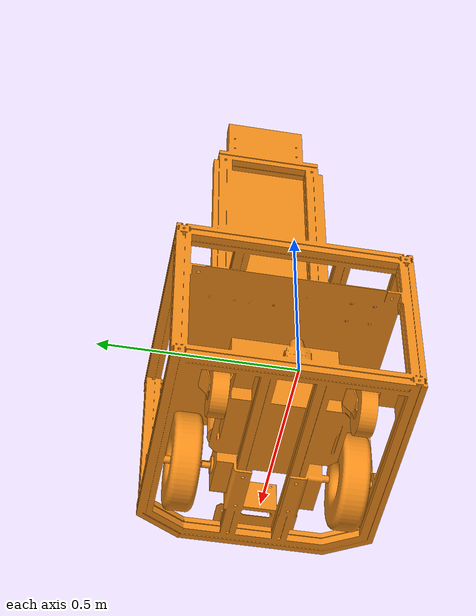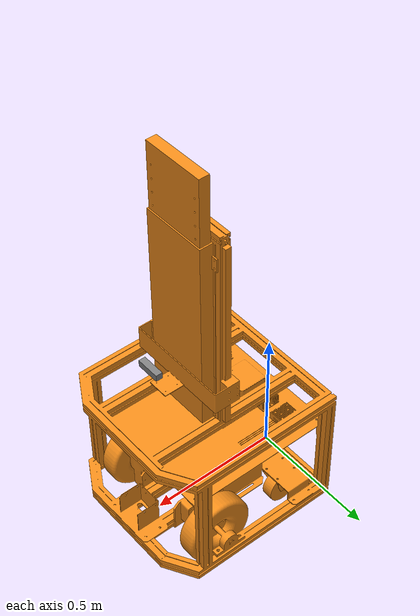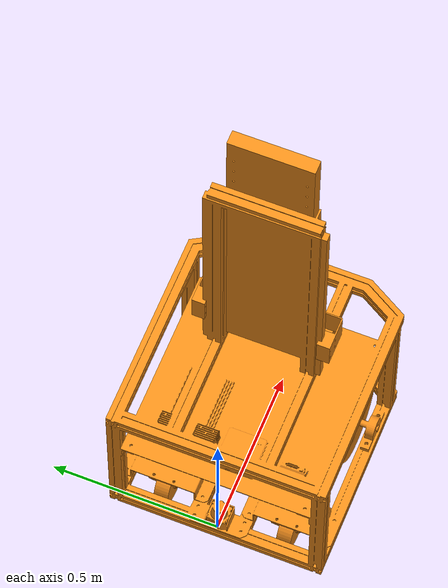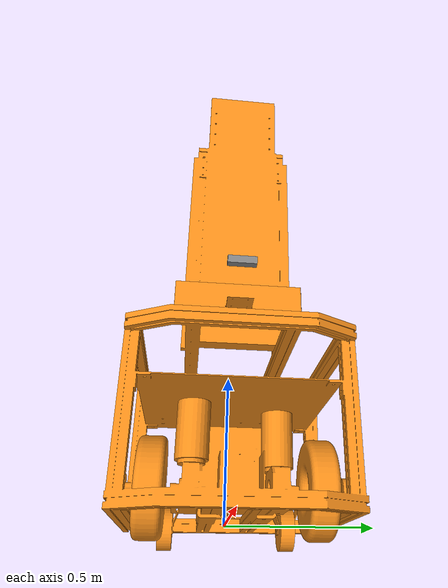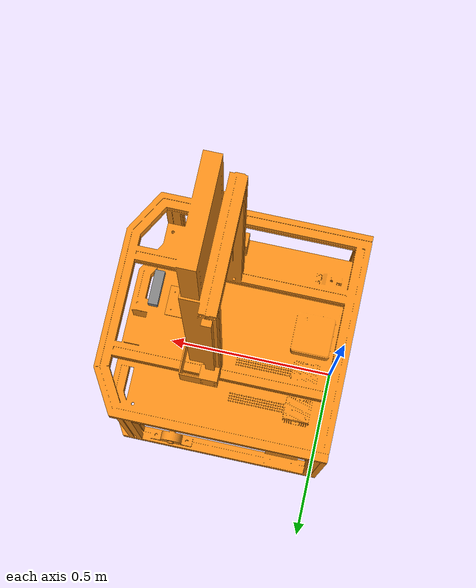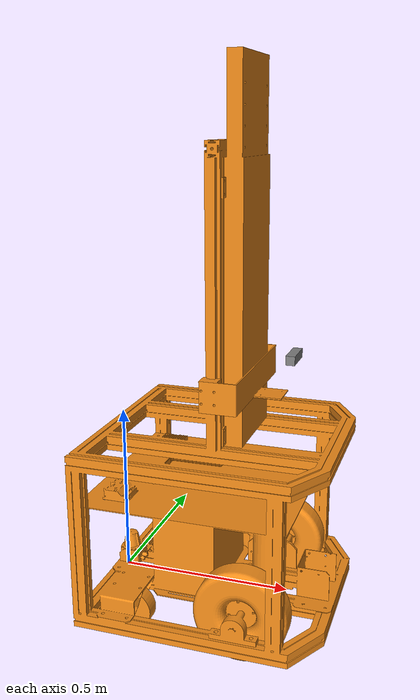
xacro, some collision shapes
<robot name="OPTIMUS_robot_001" xmlns:xacro="http://www.ros.org/wiki/xacro">

    <xacro:property name="M_PI" value="3.1415926535897931"/>
    <xacro:property name="deg_to_rad" value="0.01745329251994329577"/>
    <xacro:property name="camera_link" value="0.05" /> <!-- Size of square 'camera' box -->

    <xacro:property name="INTEL_D435_MOUNT_LINK" value="camera_mount_dummy_link"/>
    <xacro:property name="INTEL_D435_MOUNT_X" value="0.1"/>
    <xacro:property name="INTEL_D435_MOUNT_Y" value="-0.045"/>
    <xacro:property name="INTEL_D435_MOUNT_Z" value="0.1"/>
    <xacro:property name="INTEL_D435_MOUNT_R" value="${M_PI*0.0}"/>
    <xacro:property name="INTEL_D435_MOUNT_P" value="${M_PI*0.0}"/>
    <xacro:property name="INTEL_D435_MOUNT_Y" value="${M_PI*0.0}"/>
    <xacro:include filename="sensors/intel_d435.xacro"/>

    <link name="base_footprint"/>
    <joint name="base_footprint_joint" type="fixed">
        <parent link="base_footprint"/>
        <child link="base_link"/>
        <origin xyz="0.00 0.00 0" rpy="0.0 0.0 0.0"/>
    </joint>

        <link name="camera_mount_dummy_link"/>
    <joint name="camera_mount_dummy_link_joint" type="fixed">
        <parent link="elevator"/>
        <child link="camera_mount_dummy_link"/>
        <origin xyz="0 0 0" rpy="${M_PI*0.0} ${M_PI*0.0} ${M_PI*0.0}"/>
    </joint>

    <!-- Base Link -->
    <link name="base_link">
        <collision>
            <origin xyz="0 0 0" rpy="0 0 0"/>
            <geometry>
                <mesh filename="package://infi_sim_v1/models/OPTIMUS_robot_001/meshes/base_link_collision_101.stl" scale="1 1 1"/>
            </geometry>
        </collision>
        <visual>
            <origin xyz="0 0 0" rpy="0 0 0"/>
            <geometry>
                <mesh filename="package://infi_sim_v1/models/OPTIMUS_robot_001/meshes/base_link.STL" scale="1 1 1"/>
            </geometry>
            <material name="orange"/>
        </visual>
        <inertial>
            <origin xyz="0.3 0 0.2" rpy="0 0 0"/>
            <mass value="80"/>
            <inertia
                    ixx="14.480" ixy="0" ixz="0.0"
                    iyy="14.672" iyz="0.0"
                    izz="3.480"/>
        </inertial>
    </link>
    <gazebo reference="base_link">
        <mu1>0.1</mu1>
        <mu2>0.1</mu2>
        <kp>500000.0</kp>
        <kd>10.0</kd>
        <minDepth>0.001</minDepth>
        <maxVel>0.1</maxVel>
        <fdir1>1 0 0</fdir1>
        <material>Gazebo/FlatBlack</material>
    </gazebo>

    <!-- Wheels -->
    <joint name="j_whFR" type="continuous">
        <parent link="base_link"/>
        <child link="whFR"/>
        <origin xyz="0.4315 -0.185 0.0533" rpy="0 0 0"/>
        <axis xyz="0 1 0"/>
    </joint>
    <link name="whFR">
        <collision>
            <origin xyz="0 -0.0375 0" rpy="1.5707963267948966 0 0"/>
            <geometry>
                <cylinder radius="0.13" length="0.075"/>

            </geometry>
        </collision>
        <visual>
            <origin xyz="0 0 0" rpy="0 0 -1.5707963267948966"/>
            <geometry>
                <mesh filename="package://infi_sim_v1/models/OPTIMUS_robot_001/meshes/wheel_front_left.STL" scale="1 1 1"/>
            </geometry>
            <material name="orange"/>
        </visual>

        <inertial>
            <origin xyz="0 0.0 0" rpy="0 0 0"/>
            <mass value="1.5"/>
            <inertia
                    ixx="0.007688273" ixy="0.0" ixz="0.0"
                    iyy="0.0140792" iyz="0.0"
                    izz="0.007688273"/>
        </inertial>
    </link>

    <joint name="j_whFL" type="continuous">
        <parent link="base_link"/>
        <child link="whFL"/>
        <origin xyz="0.4315 0.185 0.0533" rpy="0 0 0"/>
        <axis xyz="0 1 0"/>
    </joint>
    <link name="whFL">
        <collision>
            <origin xyz="0 0.0375 0" rpy=" 1.5707963267948966 0 0"/>
            <geometry>
                <cylinder radius="0.13" length="0.075"/>
                <mesh filename="package://infi_sim_v1/models/OPTIMUS_robot_001/meshes/wheel_front_left.STL" scale="1 1 1"/>
            </geometry>
        </collision>

        <visual>
            <origin xyz="0 0 0" rpy="0 0 1.5707963267948966"/>
            <geometry>
                <mesh filename="package://infi_sim_v1/models/OPTIMUS_robot_001/meshes/wheel_front_left.STL" scale="1 1 1"/>
            </geometry>
            <material name="orange"/>
        </visual>

        <inertial>
            <origin xyz="0 0.0 0" rpy="0 0 0"/>
            <mass value="1.5"/>
            <inertia
                    ixx="0.007688273" ixy="0.0" ixz="0.0"
                    iyy="0.0140792" iyz="0.0"
                    izz="0.007688273"/>
        </inertial>
    </link>

    <joint name="j_whRL" type="fixed">
        <parent link="base_link"/>
        <child link="whRL"/>
        <origin xyz="0.095 0.2075 -0.0173" rpy="0 0 0"/>
        <axis xyz="0 1 0"/>
    </joint>
    <link name="whRL">
        <collision>
            <origin xyz="0 0 0" rpy="1.5707963267948966 0 0"/>
            <geometry>
                <mesh filename="package://infi_sim_v1/models/OPTIMUS_robot_001/meshes/wheel_back_left.STL" scale="1 1 1"/>
            </geometry>
        </collision>
        <visual>
            <origin xyz="0 0 0" rpy="1.5707963267948966 0 0"/>
            <geometry>
                <mesh filename="package://infi_sim_v1/models/OPTIMUS_robot_001/meshes/wheel_back_left.STL" scale="1 1 1"/>
            </geometry>
            <material name="orange"/>
        </visual>

        <inertial>
            <origin xyz="0 -0.0215 0" rpy="0 0 0"/>
            <mass value="0.4"/>
            <inertia
                    ixx="0.0004538583" ixy="0.0" ixz="0.0"
                    iyy="0.00078445" iyz="0.0"
                    izz="0.0004538583"/>
        </inertial>
    </link>
    <gazebo reference="whRL">
        <mu1>0.0000001</mu1>
        <mu2>0.0000001</mu2>
        <kp>500000.0</kp>
        <kd>10.0</kd>
        <minDepth>0.001</minDepth>
        <maxVel>0.1</maxVel>
        <fdir1>1 0 0</fdir1>
        <material>Gazebo/Orange</material>
    </gazebo>

    <joint name="j_whRR" type="fixed">
        <parent link="base_link"/>
        <child link="whRR"/>
        <origin xyz="0.095 -0.2075 -0.0173" rpy="0 0 0"/>
        <axis xyz="0 1 0"/>
    </joint>
    <link name="whRR">
        <collision>
            <origin xyz="0 0 0" rpy="-1.5707963267948966 0 0"/>
            <geometry>
                <mesh filename="package://infi_sim_v1/models/OPTIMUS_robot_001/meshes/wheel_back_left.STL" scale="1 1 1"/>
            </geometry>
        </collision>
        <visual>
            <origin xyz="0 0 0" rpy="-1.5707963267948966 0 0"/>
            <geometry>
                <mesh filename="package://infi_sim_v1/models/OPTIMUS_robot_001/meshes/wheel_back_left.STL" scale="1 1 1"/>
            </geometry>
            <material name="orange"/>
        </visual>

        <inertial>
            <origin xyz="0 0.0215 0" rpy="0 0 0"/>
            <mass value="0.4"/>
            <inertia
                    ixx="0.0004538583" ixy="0.0" ixz="0.0"
                    iyy="0.00078445" iyz="0.0"
                    izz="0.0004538583"/>
        </inertial>
    </link>
    <gazebo reference="whRR">
        <mu1>0.0000001</mu1>
        <mu2>0.0000001</mu2>
        <kp>500000.0</kp>
        <kd>10.0</kd>
        <minDepth>0.001</minDepth>
        <maxVel>0.1</maxVel>
        <fdir1>1 0 0</fdir1>
        <material>Gazebo/Orange</material>
    </gazebo>

    <!-- Elevator -->
    <joint name="j_elev" type="fixed">
        <parent link="base_link"/>
        <child link="elevator"/>
        <origin xyz="0.4065 0 0.595" rpy="0 0 0"/>
        <axis xyz="0 0 1"/>
        <limit effort="30" velocity="1.0" lower="0" upper="0.7"/>

    </joint>
    <link name="elevator">
        <collision>
            <origin xyz="0 0 0" rpy="0 0 0"/>
            <geometry>
                <mesh filename="package://infi_sim_v1/models/OPTIMUS_robot_001/meshes/elevator_robotic_arm.STL" scale="1 1 1"/>
            </geometry>
        </collision>
        <visual>
            <origin xyz="0 0 0" rpy="0 0 0"/>
            <geometry>
                <mesh filename="package://infi_sim_v1/models/OPTIMUS_robot_001/meshes/elevator_robotic_arm.STL" scale="1 1 1"/>
            </geometry>
            <material name="orange"/>
        </visual>
        <inertial>
            <origin xyz="0 0 0" rpy="0 0 0"/>
            <mass value="1.5"/>
            <inertia
                    ixx="0.0302" ixy="0.0" ixz="0.0"
                    iyy="0.0027" iyz="0"
                    izz="0.0302"/>
        </inertial>
    </link>

    <!-- Sensors -->

    <joint name="j_ray_sensor_front" type="fixed">
        <parent link="base_link"/>
        <child link="ray_sensor_front"/>
        <origin xyz="0.8 0 0.120" rpy="0 0 0"/>
        <axis xyz="0 0 1"/>
    </joint>
    <link name="ray_sensor_front">
        <inertial>
            <origin xyz="0 0 0" rpy="0 0 0"/>
            <mass value="0.0001"/>
            <inertia
                    ixx="1e-10" ixy="0.0" ixz="0.0"
                    iyy="1e-10" iyz="0"
                    izz="1e-10"/>
        </inertial>
    </link>
    <gazebo reference="ray_sensor_front">
        <sensor type="ray" name="ray_sensor">
            <always_on>true</always_on>
            <update_rate>100</update_rate>
            <pose>1 0 0.1 0 0 0</pose>
            <visualize>true</visualize>
            <ray>
                <scan>
                    <horizontal>
                        <samples>640</samples>
                        <resolution>1</resolution>
                        <min_angle>-2</min_angle>
                        <max_angle>2</max_angle>
                    </horizontal>
                </scan>
                <range>
                    <min>0.08</min>
                    <max>10.0</max>
                    <resolution>0.01</resolution>
                </range>
            </ray>
            <plugin name="gazebo_ros_laser_controller" filename="libgazebo_ros_laser.so">
                <gaussianNoise>0.00005</gaussianNoise>
                <alwaysOn>true</alwaysOn>
                <updateRate>50</updateRate>
                <topicName>/scan</topicName>
                <frameName>ray_sensor_front</frameName>
                <hokuyoMinIntensity>101</hokuyoMinIntensity>
            </plugin>
        </sensor>
    </gazebo>

    <joint name="j_imu_link" type="fixed">
        <parent link="base_link"/>
        <child link="imu_link"/>
        <origin xyz="0.3 0 0" rpy="0 0 0"/>
        <axis xyz="0 0 1"/>
    </joint>
    <link name="imu_link">
        <inertial>
            <origin xyz="0 0 0" rpy="0 0 0"/>
            <mass value="0.0001"/>
            <inertia
                    ixx="1e-10" ixy="0.0" ixz="0.0"
                    iyy="1e-10" iyz="0"
                    izz="1e-10"/>
        </inertial>
    </link>

    <gazebo reference="imu_link">
        <sensor type="imu" name="imu">
            <always_on>true</always_on>
            <visualize>true</visualize>
        </sensor>
        <material>Gazebo/Grey</material>
    </gazebo>

    <gazebo>
        <plugin name="imu_plugin" filename="libgazebo_ros_imu.so">
            <alwaysOn>true</alwaysOn>
            <bodyName>imu_link</bodyName>
            <frameName>imu_link</frameName>
            <topicName>imu</topicName>
            <serviceName>imu_service</serviceName>
            <gaussianNoise>0.0</gaussianNoise>
            <updateRate>200</updateRate>
            <imu>
                <noise>
                    <type>gaussian</type>
                    <rate>
                        <mean>0.0</mean>
                        <stddev>2e-7</stddev>
                        <bias_mean>0.0</bias_mean>
                        <bias_stddev>0.0</bias_stddev>
                    </rate>
                    <accel>
                        <mean>0.0</mean>
                        <stddev>1.7e-7</stddev>
                        <bias_mean>0.0</bias_mean>
                        <bias_stddev>0.0</bias_stddev>
                    </accel>
                </noise>
            </imu>
        </plugin>
    </gazebo>

    <gazebo>
        <plugin name="optimus_diff_drive" filename="libgazebo_ros_diff_drive.so">
            <commandTopic>cmd_vel</commandTopic>
            <odometryTopic>odom</odometryTopic>
            <odometryFrame>odom</odometryFrame>
            <publishOdomTF>true</publishOdomTF>
            <robotBaseFrame>base_footprint</robotBaseFrame>
            <publishWheelTF>false</publishWheelTF>
            <publishTf>true</publishTf>
            <publishWheelJointState>true</publishWheelJointState>
            <legacyMode>false</legacyMode>
            <updateRate>30</updateRate>
            <leftJoint>j_whFL</leftJoint>
            <rightJoint>j_whFR</rightJoint>
            <wheelSeparation>0.445</wheelSeparation>
            <wheelDiameter>0.26</wheelDiameter>
            <wheelAcceleration>1</wheelAcceleration>
            <wheelTorque>10</wheelTorque>
            <rosDebugLevel>na</rosDebugLevel>
        </plugin>
    </gazebo>
</robot>

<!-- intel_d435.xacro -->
<robot name="intel_d435" xmlns:xacro="http://www.ros.org/wiki/xacro">

      <!-- The following values are approximate, and the camera node
   publishing TF values with actual calibrated camera extrinsic values -->
  <xacro:property name="d435_cam_depth_to_left_ir_offset" value="0.0"/>
  <xacro:property name="d435_cam_depth_to_right_ir_offset" value="-0.050"/>
  <xacro:property name="d435_cam_depth_to_color_offset" value="0.015"/>

  <!-- The following values model the aluminum peripherial case for the
    D435 camera, with the camera joint represented by the actual
    peripherial camera tripod mount -->
  <xacro:property name="d435_cam_width" value="0.090"/>
  <xacro:property name="d435_cam_height" value="0.025"/>
  <xacro:property name="d435_cam_depth" value="0.02505"/>
  <xacro:property name="d435_cam_mount_from_center_offset" value="0.0149"/>

  <!-- The following offset is relative the the physical D435 camera peripherial
    camera tripod mount -->
  <xacro:property name="d435_cam_depth_px" value="${d435_cam_mount_from_center_offset}"/>
  <xacro:property name="d435_cam_depth_py" value="0.0175"/>
  <xacro:property name="d435_cam_depth_pz" value="${d435_cam_height/2}"/>

  <material name="Aluminum">
    <color rgba="0.5 0.5 0.5 1"/>
  </material>

    <joint name="intel_d435_mount_fixed" type="fixed">
        <origin xyz="${INTEL_D435_MOUNT_X} ${INTEL_D435_MOUNT_Y} ${INTEL_D435_MOUNT_Z}"
                rpy="${INTEL_D435_MOUNT_R} ${INTEL_D435_MOUNT_P} ${INTEL_D435_MOUNT_Y}"/>
        <parent link="${INTEL_D435_MOUNT_LINK}"/>
        <child link="camera_link"/>
    </joint>

    <link name="camera_link">
      <visual>
      <origin xyz="${d435_cam_mount_from_center_offset} 0.0 ${d435_cam_height/2}" rpy="${M_PI/2} 0 ${M_PI/2}"/>
        <geometry>
	      <mesh filename="package://infi_sim_v1/models/OPTIMUS_robot_001/meshes/d435.dae" />
        </geometry>
        <material name="Aluminum"/>
      </visual>
      <collision>
        <origin xyz="0.0 0.0 ${d435_cam_height/2}" rpy="0 0 0"/>
        <geometry>
          <box size="${d435_cam_depth} ${d435_cam_width} ${d435_cam_height}"/>
        </geometry>
      </collision>
      <inertial>
        <!-- The following are not reliable values, and should not be used for modeling -->
        <mass value="0.564" />
        <origin xyz="0 0 0" />
        <inertia ixx="0.003881243" ixy="0.0" ixz="0.0" iyy="0.000498940" iyz="0.0" izz="0.003879257" />
      </inertial>
    </link>

    <!--The following links will be not modeled and displayed.-->
      <!-- camera depth joints and links -->
      <joint name="camera_depth_joint" type="fixed">
        <origin xyz="${d435_cam_depth_px} ${d435_cam_depth_py} ${d435_cam_depth_pz}" rpy="0 0 0"/>
        <parent link="camera_link"/>
        <child link="camera_depth_frame" />
      </joint>
      <link name="camera_depth_frame"/>

      <joint name="camera_depth_optical_joint" type="fixed">
        <origin xyz="0 0 0" rpy="${-M_PI/2} 0 ${-M_PI/2}" />
        <parent link="camera_depth_frame" />
        <child link="camera_depth_optical_frame" />
      </joint>
      <link name="camera_depth_optical_frame"/>

      <!-- camera left IR joints and links -->
      <joint name="camera_left_ir_joint" type="fixed">
        <origin xyz="0 ${d435_cam_depth_to_left_ir_offset} 0" rpy="0 0 0" />
        <parent link="camera_depth_frame" />
        <child link="camera_left_ir_frame" />
      </joint>
      <link name="camera_left_ir_frame"/>

      <joint name="camera_left_ir_optical_joint" type="fixed">
        <origin xyz="0 0 0" rpy="${-M_PI/2} 0 ${-M_PI/2}" />
        <parent link="camera_left_ir_frame" />
        <child link="camera_left_ir_optical_frame" />
      </joint>
      <link name="camera_left_ir_optical_frame"/>

      <!-- camera right IR joints and links -->
      <joint name="camera_right_ir_joint" type="fixed">
        <origin xyz="0 ${d435_cam_depth_to_right_ir_offset} 0" rpy="0 0 0" />
        <parent link="camera_depth_frame" />
        <child link="camera_right_ir_frame" />
      </joint>
      <link name="camera_right_ir_frame"/>

      <joint name="camera_right_ir_optical_joint" type="fixed">
        <origin xyz="0 0 0" rpy="${-M_PI/2} 0 ${-M_PI/2}" />
        <parent link="camera_right_ir_frame" />
        <child link="camera_right_ir_optical_frame" />
      </joint>
      <link name="camera_right_ir_optical_frame"/>

      <!-- camera color joints and links -->
      <joint name="camera_color_joint" type="fixed">
        <origin xyz="0 ${d435_cam_depth_to_color_offset} 0" rpy="0 0 0" />
        <parent link="camera_depth_frame" />
        <child link="camera_color_frame" />
      </joint>
      <link name="camera_color_frame"/>

      <joint name="camera_color_optical_joint" type="fixed">
        <origin xyz="0 0 0" rpy="${-M_PI/2} 0 ${-M_PI/2}" />
        <parent link="camera_color_frame" />
        <child link="camera_color_optical_frame" />
      </joint>
      <link name="camera_color_optical_frame"/>

    <gazebo reference="camera_link">
      <sensor type="depth" name="camera">
            <always_on>true</always_on>
            <update_rate>20.0</update_rate>
            <camera>
              <horizontal_fov>1.0471975512</horizontal_fov>
              <image>
                <format>R8G8B8</format>
                <width>1280</width>
                <height>800</height>
              </image>
              <clip>
                <near>0.05</near>
                <far>8.0</far>
              </clip>
            </camera>
            <plugin name="kinect_camera_controller" filename="libgazebo_ros_openni_kinect.so">
              <robotNamespace>/</robotNamespace>
              <cameraName>camera</cameraName>
              <alwaysOn>true</alwaysOn>
              <updateRate>10</updateRate>
              <imageTopicName>rgb/image_raw</imageTopicName>
              <depthImageTopicName>depth/image_raw</depthImageTopicName>
              <pointCloudTopicName>depth/points</pointCloudTopicName>
              <cameraInfoTopicName>rgb/camera_info</cameraInfoTopicName>
              <depthImageCameraInfoTopicName>depth/camera_info</depthImageCameraInfoTopicName>
              <frameName>camera_depth_optical_frame</frameName>
              <baseline>0.1</baseline>
              <pointCloudCutoff>0.4</pointCloudCutoff>
              <distortionK1>0.00000001</distortionK1>
              <distortionK2>0.00000001</distortionK2>
              <distortionK3>0.00000001</distortionK3>
              <distortionT1>0.00000001</distortionT1>
              <distortionT2>0.00000001</distortionT2>
              <CxPrime>0</CxPrime>
              <Cx>0</Cx>
              <Cy>0</Cy>
              <focalLength>0</focalLength>
             <hackBaseline>0</hackBaseline>
            </plugin>
          </sensor>
    </gazebo>

</robot>
